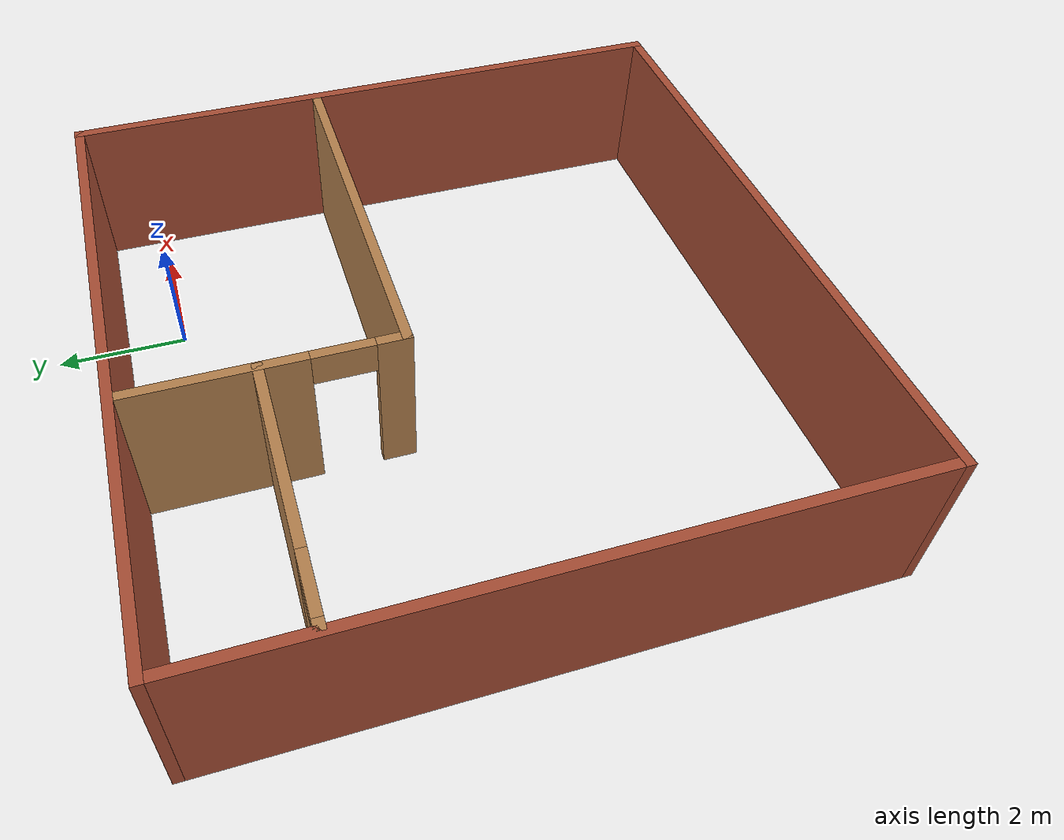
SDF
<?xml version='1.0'?>
<sdf version='1.6'>
  <model name='Building'>
    <pose frame=''>-2.27403 -3.96354 0 0 -0 0</pose>
    <link name='Wall_10'>
      <pose frame=''>-0.987448 2.9137 0 0 0 -1.5708</pose>
      <visual name='Wall_10_Visual_0'>
        <pose frame=''>-0.702002 0 1.25 0 -0 0</pose>
        <geometry>
          <box>
            <size>2.59599 0.15 2.5</size>
          </box>
        </geometry>
        <material>
          <script>
            <uri>file://media/materials/scripts/gazebo.material</uri>
            <name>Gazebo/Wood</name>
          </script>
          <ambient>1 1 1 1</ambient>
        </material>
        <meta>
          <layer>0</layer>
        </meta>
      </visual>
      <collision name='Wall_10_Collision_0'>
        <geometry>
          <box>
            <size>2.59599 0.15 2.5</size>
          </box>
        </geometry>
        <pose frame=''>-0.702002 0 1.25 0 -0 0</pose>
      </collision>
      <visual name='Wall_10_Visual_1'>
        <pose frame=''>1.748 0 1.25 0 -0 0</pose>
        <geometry>
          <box>
            <size>0.504005 0.15 2.5</size>
          </box>
        </geometry>
        <material>
          <script>
            <uri>file://media/materials/scripts/gazebo.material</uri>
            <name>Gazebo/Wood</name>
          </script>
          <ambient>1 1 1 1</ambient>
        </material>
        <meta>
          <layer>0</layer>
        </meta>
      </visual>
      <collision name='Wall_10_Collision_1'>
        <geometry>
          <box>
            <size>0.504005 0.15 2.5</size>
          </box>
        </geometry>
        <pose frame=''>1.748 0 1.25 0 -0 0</pose>
      </collision>
      <visual name='Wall_10_Visual_2'>
        <pose frame=''>1.046 0 2.25 0 -0 0</pose>
        <geometry>
          <box>
            <size>0.9 0.15 0.5</size>
          </box>
        </geometry>
        <material>
          <script>
            <uri>file://media/materials/scripts/gazebo.material</uri>
            <name>Gazebo/Wood</name>
          </script>
          <ambient>1 1 1 1</ambient>
        </material>
        <meta>
          <layer>0</layer>
        </meta>
      </visual>
      <collision name='Wall_10_Collision_2'>
        <geometry>
          <box>
            <size>0.9 0.15 0.5</size>
          </box>
        </geometry>
        <pose frame=''>1.046 0 2.25 0 -0 0</pose>
      </collision>
    </link>
    <link name='Wall_11'>
      <collision name='Wall_11_Collision'>
        <geometry>
          <box>
            <size>6 0.15 2.5</size>
          </box>
        </geometry>
        <pose frame=''>0 0 1.25 0 -0 0</pose>
      </collision>
      <visual name='Wall_11_Visual'>
        <pose frame=''>0 0 1.25 0 -0 0</pose>
        <geometry>
          <box>
            <size>6 0.15 2.5</size>
          </box>
        </geometry>
        <material>
          <script>
            <uri>file://media/materials/scripts/gazebo.material</uri>
            <name>Gazebo/Wood</name>
          </script>
          <ambient>1 1 1 1</ambient>
        </material>
        <meta>
          <layer>0</layer>
        </meta>
      </visual>
      <pose frame=''>1.93755 0.988703 0 0 -0 0</pose>
    </link>
    <link name='Wall_13'>
      <pose frame=''>-2.92834 3.01216 0 0 -0 0</pose>
      <visual name='Wall_13_Visual_0'>
        <pose frame=''>-1.91609 0 1.25 0 -0 0</pose>
        <geometry>
          <box>
            <size>0.167821 0.15 2.5</size>
          </box>
        </geometry>
        <material>
          <script>
            <uri>file://media/materials/scripts/gazebo.material</uri>
            <name>Gazebo/Wood</name>
          </script>
          <ambient>1 1 1 1</ambient>
        </material>
        <meta>
          <layer>0</layer>
        </meta>
      </visual>
      <collision name='Wall_13_Collision_0'>
        <geometry>
          <box>
            <size>0.167821 0.15 2.5</size>
          </box>
        </geometry>
        <pose frame=''>-1.91609 0 1.25 0 -0 0</pose>
      </collision>
      <visual name='Wall_13_Visual_1'>
        <pose frame=''>0.53391 0 1.25 0 -0 0</pose>
        <geometry>
          <box>
            <size>2.93218 0.15 2.5</size>
          </box>
        </geometry>
        <material>
          <script>
            <uri>file://media/materials/scripts/gazebo.material</uri>
            <name>Gazebo/Wood</name>
          </script>
          <ambient>1 1 1 1</ambient>
        </material>
        <meta>
          <layer>0</layer>
        </meta>
      </visual>
      <collision name='Wall_13_Collision_1'>
        <geometry>
          <box>
            <size>2.93218 0.15 2.5</size>
          </box>
        </geometry>
        <pose frame=''>0.53391 0 1.25 0 -0 0</pose>
      </collision>
      <visual name='Wall_13_Visual_2'>
        <pose frame=''>-1.38218 0 2.25 0 -0 0</pose>
        <geometry>
          <box>
            <size>0.9 0.15 0.5</size>
          </box>
        </geometry>
        <material>
          <script>
            <uri>file://media/materials/scripts/gazebo.material</uri>
            <name>Gazebo/Wood</name>
          </script>
          <ambient>1 1 1 1</ambient>
        </material>
        <meta>
          <layer>0</layer>
        </meta>
      </visual>
      <collision name='Wall_13_Collision_2'>
        <geometry>
          <box>
            <size>0.9 0.15 0.5</size>
          </box>
        </geometry>
        <pose frame=''>-1.38218 0 2.25 0 -0 0</pose>
      </collision>
    </link>
    <link name='Wall_2'>
      <collision name='Wall_2_Collision'>
        <geometry>
          <box>
            <size>10 0.15 2.5</size>
          </box>
        </geometry>
        <pose frame=''>0 0 1.25 0 -0 0</pose>
      </collision>
      <visual name='Wall_2_Visual'>
        <pose frame=''>0 0 1.25 0 -0 0</pose>
        <geometry>
          <box>
            <size>10 0.15 2.5</size>
          </box>
        </geometry>
        <material>
          <script>
            <uri>file://media/materials/scripts/gazebo.material</uri>
            <name>Gazebo/Bricks</name>
          </script>
          <ambient>0 0.333333 0.498039 1</ambient>
        </material>
        <meta>
          <layer>0</layer>
        </meta>
      </visual>
      <pose frame=''>0 4.93368 0 0 -0 2.9e-05</pose>
    </link>
    <link name='Wall_3'>
      <collision name='Wall_3_Collision'>
        <geometry>
          <box>
            <size>10 0.15 2.5</size>
          </box>
        </geometry>
        <pose frame=''>0 0 1.25 0 -0 0</pose>
      </collision>
      <visual name='Wall_3_Visual'>
        <pose frame=''>0 0 1.25 0 -0 0</pose>
        <geometry>
          <box>
            <size>10 0.15 2.5</size>
          </box>
        </geometry>
        <material>
          <script>
            <uri>file://media/materials/scripts/gazebo.material</uri>
            <name>Gazebo/Bricks</name>
          </script>
          <ambient>0 0.333333 0.498039 1</ambient>
        </material>
        <meta>
          <layer>0</layer>
        </meta>
      </visual>
      <pose frame=''>4.92497 -0.008908 0 0 0 -1.5708</pose>
    </link>
    <link name='Wall_5'>
      <collision name='Wall_5_Collision'>
        <geometry>
          <box>
            <size>10 0.15 2.5</size>
          </box>
        </geometry>
        <pose frame=''>0 0 1.25 0 -0 0</pose>
      </collision>
      <visual name='Wall_5_Visual'>
        <pose frame=''>0 0 1.25 0 -0 0</pose>
        <geometry>
          <box>
            <size>10 0.15 2.5</size>
          </box>
        </geometry>
        <material>
          <script>
            <uri>file://media/materials/scripts/gazebo.material</uri>
            <name>Gazebo/Bricks</name>
          </script>
          <ambient>0 0.333333 0.498039 1</ambient>
        </material>
        <meta>
          <layer>0</layer>
        </meta>
      </visual>
      <pose frame=''>0 -4.93368 0 0 -0 3.14155</pose>
    </link>
    <link name='Wall_7'>
      <collision name='Wall_7_Collision'>
        <geometry>
          <box>
            <size>10.0177 0.15 2.5</size>
          </box>
        </geometry>
        <pose frame=''>0 0 1.25 0 -0 0</pose>
      </collision>
      <visual name='Wall_7_Visual'>
        <pose frame=''>0 0 1.25 0 -0 0</pose>
        <geometry>
          <box>
            <size>10.0177 0.15 2.5</size>
          </box>
        </geometry>
        <material>
          <script>
            <uri>file://media/materials/scripts/gazebo.material</uri>
            <name>Gazebo/Bricks</name>
          </script>
          <ambient>0 0.333333 0.498039 1</ambient>
        </material>
        <meta>
          <layer>0</layer>
        </meta>
      </visual>
      <pose frame=''>-4.92497 4.3e-05 0 0 -0 1.5708</pose>
    </link>
    <static>1</static>
  </model>
</sdf>
